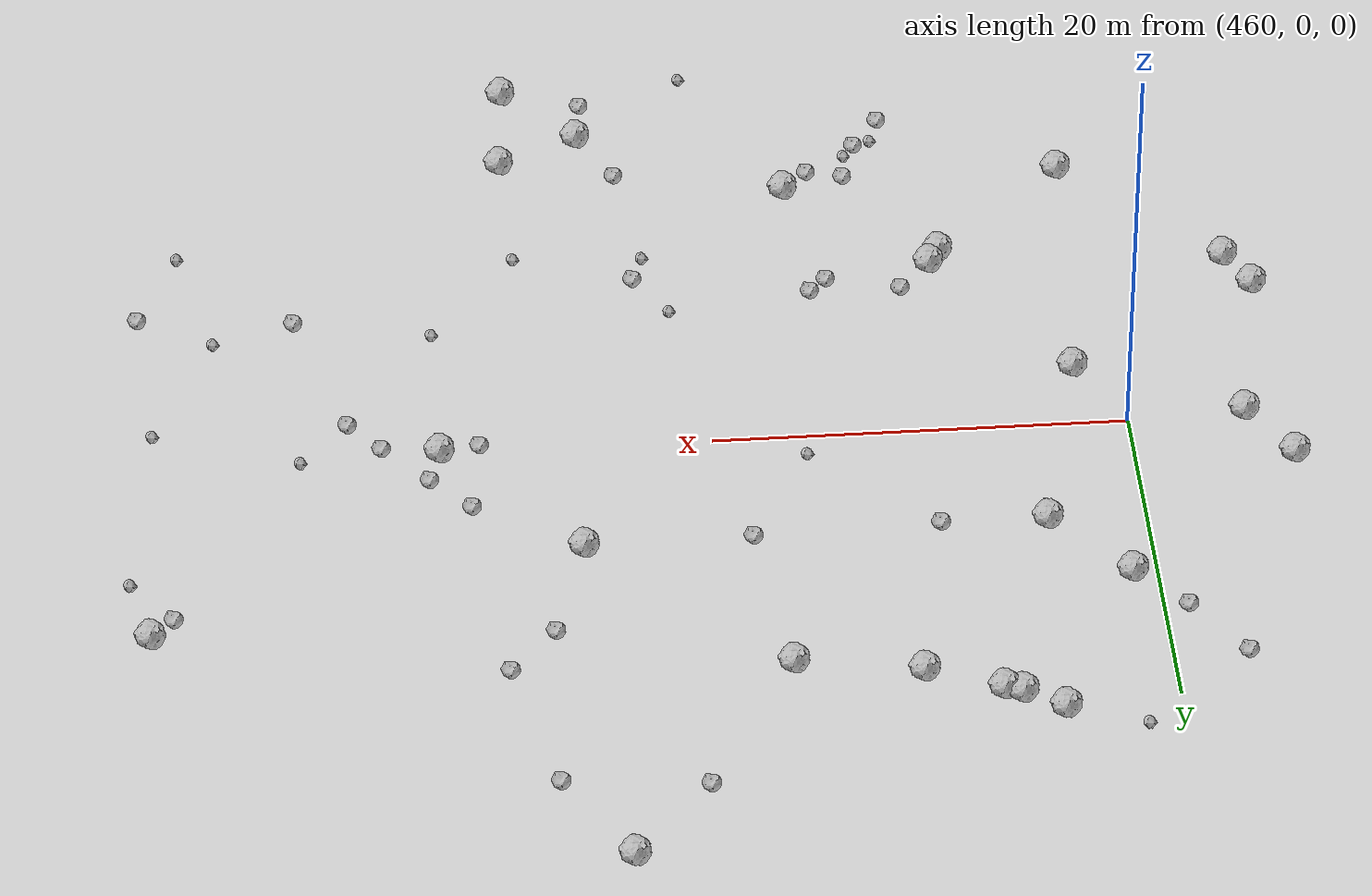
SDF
<sdf version="1.6">
 <world name="default">
  <include><uri>model://sun</uri></include>
  <model name="rock1_12_4">
   <include><uri>model://rock1</uri><pose>489.0623641038429 -22.596156562857974 0.5 0 0 0</pose></include>
  </model>
  <model name="rock1_12_5">
   <include><uri>model://rock1</uri><pose>475.01783552099243 -19.453450808144044 0.5 0 0 0</pose></include>
  </model>
  <model name="rock1_12_6">
   <include><uri>model://rock1</uri><pose>452.6901484380129 -10.04757776420809 0.5 0 0 0</pose></include>
  </model>
  <model name="rock1_12_7">
   <include><uri>model://rock1</uri><pose>468.1054659948761 19.250103296180782 0.5 0 0 0</pose></include>
  </model>
  <model name="rock1_12_8">
   <include><uri>model://rock1</uri><pose>467.26956394485984 19.572626275320943 0.5 0 0 0</pose></include>
  </model>
  <model name="rock1_12_9">
   <include><uri>model://rock1</uri><pose>462.22347057391863 -4.136885481045464 0.5 0 0 0</pose></include>
  </model>
  <model name="rock1_12_10">
   <include><uri>model://rock1</uri><pose>465.42440888030563 20.779112676760676 0.5 0 0 0</pose></include>
  </model>
  <model name="rock1_12_11">
   <include><uri>model://rock1</uri><pose>461.19159721802106 11.39044054889002 0.5 0 0 0</pose></include>
  </model>
  <model name="rock1_12_12">
   <include><uri>model://rock1</uri><pose>493.10528532463127 0.11625653035144978 0.5 0 0 0</pose></include>
  </model>
  <model name="rock1_12_13">
   <include><uri>model://rock1</uri><pose>507.06683619923945 12.743369695607477 0.5 0 0 0</pose></include>
  </model>
  <model name="rock1_12_14">
   <include><uri>model://rock1</uri><pose>468.34922398113173 -12.88806496997504 0.5 0 0 0</pose></include>
  </model>
  <model name="rock1_12_15">
   <include><uri>model://rock1</uri><pose>452.39713475861873 3.217540031787671 0.5 0 0 0</pose></include>
  </model>
  <model name="rock1_12_16">
   <include><uri>model://rock1</uri><pose>471.6146358289872 17.733013792578355 0.5 0 0 0</pose></include>
  </model>
  <model name="rock1_12_17">
   <include><uri>model://rock1</uri><pose>488.6623937054773 -28.48804303723026 0.5 0 0 0</pose></include>
  </model>
  <model name="rock1_12_18">
   <include><uri>model://rock1</uri><pose>467.7941629798898 -13.84891888405972 0.5 0 0 0</pose></include>
  </model>
  <model name="rock1_12_19">
   <include><uri>model://rock1</uri><pose>477.55170738817594 16.70717897865653 0.5 0 0 0</pose></include>
  </model>
  <model name="rock1_12_20">
   <include><uri>model://rock1</uri><pose>464.712920478302 7.245774301740397 0.5 0 0 0</pose></include>
  </model>
  <model name="rock1_12_21">
   <include><uri>model://rock1</uri><pose>485.09769447549303 -24.56086401562351 0.5 0 0 0</pose></include>
  </model>
  <model name="rock1_12_22">
   <include><uri>model://rock1</uri><pose>453.80228944872846 -12.371146729385217 0.5 0 0 0</pose></include>
  </model>
  <model name="rock1_12_23">
   <include><uri>model://rock1</uri><pose>486.65621612247264 7.671426373126785 0.5 0 0 0</pose></include>
  </model>
  <model name="rock1_12_24">
   <include><uri>model://rock1</uri><pose>461.20423950060473 -20.12516894994999 0.5 0 0 0</pose></include>
  </model>
  <model name="rock1_12_25">
   <include><uri>model://rock1</uri><pose>454.3683427668235 -0.1848910891347053 0.5 0 0 0</pose></include>
  </model>
  <model name="rock1_12_26">
   <include><uri>model://rock1</uri><pose>485.7376022688806 29.238994478969367 0.5 0 0 0</pose></include>
  </model>
  <model name="rock2_12_0">
   <include><uri>model://rock2</uri><pose>497.41474649970576 -2.2365919947730966 0.3 0 0 0</pose></include>
  </model>
  <model name="rock2_12_1">
   <include><uri>model://rock2</uri><pose>473.72202329685155 -20.75006327145679 0.3 0 0 0</pose></include>
  </model>
  <model name="rock2_12_2">
   <include><uri>model://rock2</uri><pose>488.7348018449247 24.106643481237086 0.3 0 0 0</pose></include>
  </model>
  <model name="rock2_12_3">
   <include><uri>model://rock2</uri><pose>499.7597987710459 -10.380713500633526 0.3 0 0 0</pose></include>
  </model>
  <model name="rock2_12_4">
   <include><uri>model://rock2</uri><pose>484.73656540091025 -27.213722827313276 0.3 0 0 0</pose></include>
  </model>
  <model name="rock2_12_5">
   <include><uri>model://rock2</uri><pose>478.65357850879127 7.508389324973756 0.3 0 0 0</pose></include>
  </model>
  <model name="rock2_12_6">
   <include><uri>model://rock2</uri><pose>473.5231413726236 -11.955128306458779 0.3 0 0 0</pose></include>
  </model>
  <model name="rock2_12_7">
   <include><uri>model://rock2</uri><pose>471.1598151892673 -22.833947607802063 0.3 0 0 0</pose></include>
  </model>
  <model name="rock2_12_8">
   <include><uri>model://rock2</uri><pose>456.52760925076257 17.44271301559197 0.3 0 0 0</pose></include>
  </model>
  <model name="rock2_12_9">
   <include><uri>model://rock2</uri><pose>469.7792290482462 -24.858472912724388 0.3 0 0 0</pose></include>
  </model>
  <model name="rock2_12_10">
   <include><uri>model://rock2</uri><pose>491.74841139591524 4.345575476809785 0.3 0 0 0</pose></include>
  </model>
  <model name="rock2_12_11">
   <include><uri>model://rock2</uri><pose>490.5733640925025 16.30480663497586 0.3 0 0 0</pose></include>
  </model>
  <model name="rock2_12_12">
   <include><uri>model://rock2</uri><pose>507.3575656323318 -11.145977067852197 0.3 0 0 0</pose></include>
  </model>
  <model name="rock2_12_13">
   <include><uri>model://rock2</uri><pose>491.1780524163194 -0.22589018749462753 0.3 0 0 0</pose></include>
  </model>
  <model name="rock2_12_14">
   <include><uri>model://rock2</uri><pose>469.76274625681737 7.176771285623957 0.3 0 0 0</pose></include>
  </model>
  <model name="rock2_12_15">
   <include><uri>model://rock2</uri><pose>458.88057494218236 13.96647895237681 0.3 0 0 0</pose></include>
  </model>
  <model name="rock2_12_16">
   <include><uri>model://rock2</uri><pose>495.85851015436526 -0.30967584198197784 0.3 0 0 0</pose></include>
  </model>
  <model name="rock2_12_17">
   <include><uri>model://rock2</uri><pose>505.9585107249242 11.537426245113224 0.3 0 0 0</pose></include>
  </model>
  <model name="rock2_12_18">
   <include><uri>model://rock2</uri><pose>474.3811344606681 -11.053704785373842 0.3 0 0 0</pose></include>
  </model>
  <model name="rock2_12_19">
   <include><uri>model://rock2</uri><pose>471.93248797367437 -20.265358444408594 0.3 0 0 0</pose></include>
  </model>
  <model name="rock2_12_20">
   <include><uri>model://rock2</uri><pose>483.0122344841799 -12.635018318884569 0.3 0 0 0</pose></include>
  </model>
  <model name="rock2_12_21">
   <include><uri>model://rock2</uri><pose>488.9952217252735 -23.324134847261913 0.3 0 0 0</pose></include>
  </model>
  <model name="rock2_12_22">
   <include><uri>model://rock2</uri><pose>469.91743650637693 -10.979417876094445 0.3 0 0 0</pose></include>
  </model>
  <model name="rock2_12_23">
   <include><uri>model://rock2</uri><pose>481.97667278415145 24.776313524637054 0.3 0 0 0</pose></include>
  </model>
  <model name="rock2_12_24">
   <include><uri>model://rock2</uri><pose>488.33184978499094 13.67120197349226 0.3 0 0 0</pose></include>
  </model>
  <model name="rock2_12_25">
   <include><uri>model://rock2</uri><pose>483.3787101098738 -21.198995675004433 0.3 0 0 0</pose></include>
  </model>
  <model name="rock2_12_26">
   <include><uri>model://rock2</uri><pose>493.66771745256307 2.221738588202548 0.3 0 0 0</pose></include>
  </model>
  <model name="rock3_12_0">
   <include><uri>model://rock3</uri><pose>481.34574908399685 -10.058580390969155 0.2 0 0 0</pose></include>
  </model>
  <model name="rock3_12_1">
   <include><uri>model://rock3</uri><pose>507.9190907284577 8.793769229848742 0.2 0 0 0</pose></include>
  </model>
  <model name="rock3_12_2">
   <include><uri>model://rock3</uri><pose>461.69554318883496 22.032911349544392 0.2 0 0 0</pose></include>
  </model>
  <model name="rock3_12_3">
   <include><uri>model://rock3</uri><pose>499.7073096303001 0.34275305400332456 0.2 0 0 0</pose></include>
  </model>
  <model name="rock3_12_4">
   <include><uri>model://rock3</uri><pose>493.0425857608475 -9.054578085985817 0.2 0 0 0</pose></include>
  </model>
  <model name="rock3_12_5">
   <include><uri>model://rock3</uri><pose>505.3104198499934 -16.065708823351564 0.2 0 0 0</pose></include>
  </model>
  <model name="rock3_12_6">
   <include><uri>model://rock3</uri><pose>506.7277661454386 -2.1985559753794526 0.2 0 0 0</pose></include>
  </model>
  <model name="rock3_12_7">
   <include><uri>model://rock3</uri><pose>482.39460800807205 -14.43837712553078 0.2 0 0 0</pose></include>
  </model>
  <model name="rock3_12_8">
   <include><uri>model://rock3</uri><pose>471.6768151373086 -22.086224238227572 0.2 0 0 0</pose></include>
  </model>
  <model name="rock3_12_9">
   <include><uri>model://rock3</uri><pose>470.246180541028 -23.258169323007465 0.2 0 0 0</pose></include>
  </model>
  <model name="rock3_12_10">
   <include><uri>model://rock3</uri><pose>479.5045561848248 -29.240139564393406 0.2 0 0 0</pose></include>
  </model>
  <model name="rock3_12_11">
   <include><uri>model://rock3</uri><pose>475.55606952343334 1.4876870371516944 0.2 0 0 0</pose></include>
  </model>
  <model name="rock3_12_12">
   <include><uri>model://rock3</uri><pose>503.67775834389846 -9.127329287801402 0.2 0 0 0</pose></include>
  </model>
  <model name="rock3_12_13">
   <include><uri>model://rock3</uri><pose>488.7588656379849 -14.814491972098674 0.2 0 0 0</pose></include>
  </model>
 </world>
</sdf>
